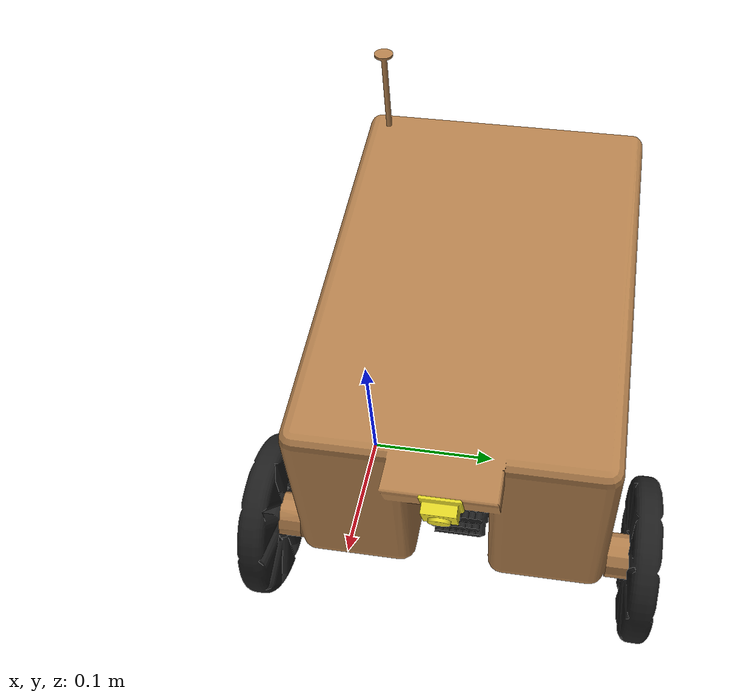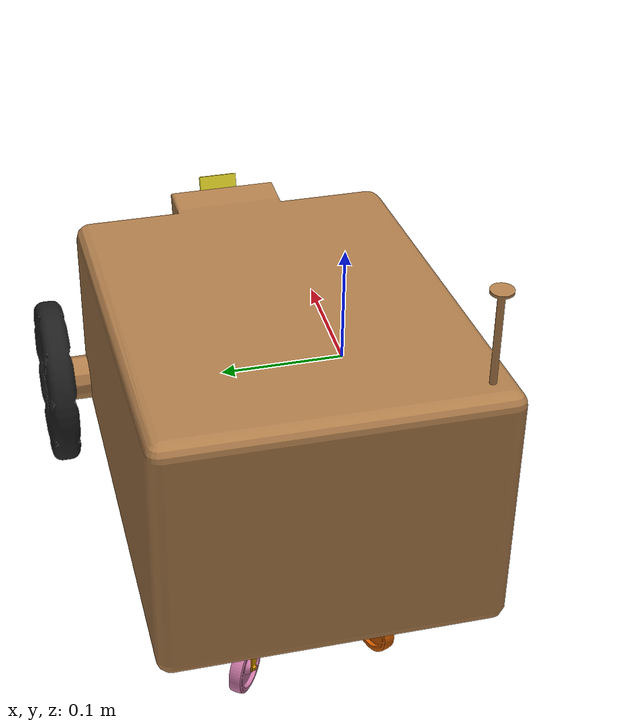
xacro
<?xml version="1.0"?>

<robot xmlns:xacro="http://www.ros.org/wiki/xacro"
 	xmlns:sensor="http://playerstage.sourceforge.net/gazebo/xmlschema/#sensor"
    	xmlns:controller="http://playerstage.sourceforge.net/gazebo/xmlschema/#controller"
    	xmlns:interface="http://playerstage.sourceforge.net/gazebo/xmlschema/#interface"
	name="diseno_final_robot">

	<xacro:include filename="$(find diseno_final_robot)/models/diseno_final_robot.gazebo" />

	<xacro:macro name="llanta_inertial" params="mass">
               <inertial>
                       <mass value="${mass}" />
                       <inertia ixx="0.00029454"
								ixy="-4.6374E-13"
								ixz="-5.3956E-11"
								iyy="0.00057368"
								iyz="-3.9038E-13"
								izz="0.00029454" />
               </inertial>
	</xacro:macro>

	<link name="base_link">
   		<visual>
			<geometry>
       			<mesh filename="package://diseno_final_robot/meshes/base_link.STL"/>
			</geometry>
			<origin rpy="0 0 0" xyz="0 0 0"/>
   		</visual>
		<collision>
			<geometry>
       				<mesh filename="package://diseno_final_robot/meshes/base_link.STL"/>
			</geometry>
			<origin rpy="0 0 0" xyz="0 0 0"/>
		</collision>
		<inertial>
			<origin
				xyz="-0.109137752535927 0.0419806407410149 -0.0760341853308248"
				rpy="0 0 0" />
			<mass
				value="14.5723926451771" />
			<inertia
				ixx="0.124657965775517"
				ixy="0.0059609663898011"
				ixz="-1.79849267536098E-05"
				iyy="0.23187346426943"
				iyz="-1.79358330442558E-05"
				izz="0.189759000135656" />
    	</inertial>
 	</link>

 	<link name="llanta1">
   		<visual>
     			<geometry>
       				<mesh filename="package://diseno_final_robot/meshes/llanta1.STL" />
     			</geometry>
			<origin rpy="0 0 0" xyz="0 0 0"/>
   			<material name="Black"/>
   		</visual>
		<collision>
				<origin xyz="0 0 0" rpy="0 0 0" />
				<geometry>
						<mesh filename="package://diseno_final_robot/meshes/llanta1.STL" />
				</geometry>
		</collision>
		<xacro:llanta_inertial mass="0.23577"/>
 	</link>

 	<link name="llanta2">
   		<visual>
     			<geometry>
       				<mesh filename="package://diseno_final_robot/meshes/llanta2.STL" />
     			</geometry>
				<origin xyz="0 0 0" rpy="0 0 0" />
   			<material name="Black"/>
   		</visual>
		<collision>
				<geometry>
						<mesh filename="package://diseno_final_robot/meshes/llanta2.STL" />
				</geometry>
     			<origin xyz="0 0 0" rpy="0 0 0" />
		</collision>
		<xacro:llanta_inertial mass="0.23577"/>

 	</link>

 	<link name="cepillo">
   		<visual>
     			<geometry>
       				<mesh filename="package://diseno_final_robot/meshes/cepillo.STL" />
     			</geometry>
   			<material name="Black"/>
   		</visual>
		<collision>
				<geometry>
						<mesh filename="package://diseno_final_robot/meshes/cepillo.STL" />
				</geometry>
		</collision>
		<inertial>
			<origin
				xyz="0.021722 -6.7968E-08 8.588E-08"
				rpy="0 0 0" />
			<mass
				value="0.28891" />
			<inertia
				ixx="0.00089633"
				ixy="1.5922E-10"
				ixz="1.6885E-10"
				iyy="0.00048375"
				iyz="2.7106E-10"
				izz="0.00048375" />
		</inertial>
 	</link>

 	<link name="camera_link">
   		<visual>
     			<geometry>
       				<mesh filename="package://diseno_final_robot/meshes/camara.STL" />
     			</geometry>
			<origin rpy="0 0 -1.57" xyz="0 0 0"/>
   		</visual>
		<collision>
				<origin xyz="0 0 0" rpy="0 0 0" />
				<geometry>
						<mesh filename="package://diseno_final_robot/meshes/camara.STL" />
				</geometry>
		</collision>
		<inertial>
			<origin
				xyz="2.5585E-05 0.0031134 2.5585E-05"
				rpy="0 0 0" />
			<mass
				value="0.0088823" />
			<inertia
				ixx="6.3678E-07"
				ixy="1.2985E-09"
				ixz="-2.4431E-10"
				iyy="9.9357E-07"
				iyz="1.2985E-09"
				izz="6.3678E-07" />
		</inertial>
 	</link>

 	<link name="llanta_caster1">
   		<visual>
     			<geometry>
        			<mesh filename="package://diseno_final_robot/meshes/llanta_caster1.STL" />
      			</geometry>
   		</visual>
		<collision>
				<geometry>
						<mesh filename="package://diseno_final_robot/meshes/llanta_caster1.STL" />
				</geometry>
		</collision>
		<inertial>
			<origin
				xyz="-0.010664 -0.020985 9.7145E-17"
				rpy="0 0 0" />
			<mass
				value="0.008626" />
			<inertia
				ixx="1.0412E-06"
				ixy="-1.1167E-22"
				ixz="7.9409E-23"
				iyy="1.0412E-06"
				iyz="1.3938E-22"
				izz="1.9805E-06" />
		</inertial>
 	</link>

 	<link name="llanta_caster2">
   		<visual>
     			<geometry>
        			<mesh filename="package://diseno_final_robot/meshes/llanta_caster2.STL" />
      			</geometry>
   		</visual>
		<collision>
				<geometry>
						<mesh filename="package://diseno_final_robot/meshes/llanta_caster2.STL" />
				</geometry>
		</collision>
		<inertial>
			<origin
				xyz="-0.010664 -0.020985 9.7145E-17"
				rpy="0 0 0" />
			<mass
				value="0.008626" />
			<inertia
				ixx="1.0412E-06"
				ixy="-1.1167E-22"
				ixz="7.9409E-23"
				iyy="1.0412E-06"
				iyz="1.3938E-22"
				izz="1.9805E-06" />
		</inertial>
 	</link>

 	<link name="base_caster1">
   		<visual>
     			<geometry>
       				<mesh filename="package://diseno_final_robot/meshes/base_caster1.STL" />
     			</geometry>
   		</visual>
		<collision>
				<geometry>
						<mesh filename="package://diseno_final_robot/meshes/base_caster1.STL" />
				</geometry>
		</collision>
		<inertial>
			<origin
				xyz="-0.0026118 -0.017938 7.0478E-08"
				rpy="0 0 0" />
			<mass
				value="0.002149" />
			<inertia
				ixx="2.3597E-07"
				ixy="-6.7941E-08"
				ixz="-2.3969E-13"
				iyy="1.3279E-07"
				iyz="1.289E-12"
				izz="2.4921E-07" />
		</inertial>
 	</link>

 	<link name="base_caster2">
   		<visual>
     			<geometry>
       				<mesh filename="package://diseno_final_robot/meshes/base_caster2.STL" />
     			</geometry>
   		</visual>
		<collision>
				<geometry>
						<mesh filename="package://diseno_final_robot/meshes/base_caster2.STL" />
				</geometry>
		</collision>
		<inertial>
			<origin
				xyz="-0.00261183863321096 -0.0179384254131546 7.65960662674203E-08"
				rpy="0 0 0" />
			<mass
				value="0.00214896191834065" />
			<inertia
				ixx="2.35965069348382E-07"
				ixy="-6.7940503373618E-08"
				ixz="-1.55884423959175E-13"
				iyy="1.32786093030239E-07"
				iyz="1.51631985361064E-12"
				izz="2.49214455592119E-07" />
		</inertial>
 	</link>

 	<joint name="base_to_llanta1" type="continuous">
   		<parent link="base_link"/>
   		<child link="llanta1"/>
   		<origin xyz="0.058802 -0.062563 -0.029378" rpy="0 -0.037671 3.1416" />
   		<axis xyz="0 1 0" />
 	</joint>

 	<joint name="base_to_llanta2" type="continuous">
   		<parent link="base_link"/>
   		<child link="llanta2"/>
   		<origin xyz="0.058573 0.21463 -0.028692" rpy="-3.1416 -1.1524 3.1416" />
   		<axis xyz="0 1 0" />
 	</joint>

 	<joint name="base_to_cepillo" type="continuous">
   		<parent link="base_link"/>
   		<child link="cepillo"/>
   		<origin xyz="-0.020064 0.056633 -0.0088271" rpy="2.209 0 1.5708" />
   		<axis xyz="1 0 0" />
 	</joint>

 	<joint name="base_to_camera" type="fixed">
   		<parent link="base_link"/>
   		<child link="camera_link"/>
   		<origin xyz="0.11119 0.077959 0.10052" rpy="3.1416 2.79 -3.1416"/>
   		<axis xyz="0 0 0" />
 	</joint>

 	<joint name="base_to_BaseCaster1" type="continuous">
   		<parent link="base_link"/>
   		<child link="base_caster1"/>
   		<origin xyz="-0.21825 0.026283 -0.05594" rpy="1.5711 0.00069423 -2.7771" />
   		<axis xyz="0 1 0" />
 	</joint>

 	<joint name="base_to_BaseCaster2" type="continuous">
   		<parent link="base_link"/>
   		<child link="base_caster2"/>
   		<origin xyz="-0.21763 0.12551 -0.05594" rpy="1.5712 -0.00060505 -0.6193" />
   		<axis xyz="0 1 0" />
 	</joint>

 	<joint name="baseCaster1_to_llantaCaster1" type="fixed">
   		<parent link="base_caster1"/>
   		<child link="llanta_caster1"/>
   		<origin xyz="0 -0.018 0" rpy="0 0 0" />
   		<axis xyz="0 0 0" />
 	</joint>

 	<joint name="baseCaster2_to_llantaCaster2" type="fixed">
   		<parent link="base_caster2"/>
   		<child link="llanta_caster2"/>
   		<origin xyz="0 -0.018 0" rpy="0 0 0" />
   		<axis xyz="0 0 0" />
 	</joint>

	<!-- WHEEL ODOMETRY -->
	<gazebo>
		<plugin name="robot_final_drive" filename="libgazebo_ros_diff_drive.so">
		<update_rate>30</update_rate>
		<!-- wheels -->
		<left_joint>base_to_llanta1</left_joint>
		<right_joint>base_to_llanta2</right_joint>
		<!-- kinematics -->
		<wheel_separation>0.3</wheel_separation>
		<wheel_diameter>0.1</wheel_diameter>
		<!-- limits -->
		<max_wheel_torque>20</max_wheel_torque>
		<max_wheel_acceleration>1.0</max_wheel_acceleration>
		<!-- Receive velocity commands on this ROS topic -->
		<command_topic>cmd_vel</command_topic>
		</plugin>
	</gazebo>

</robot>
